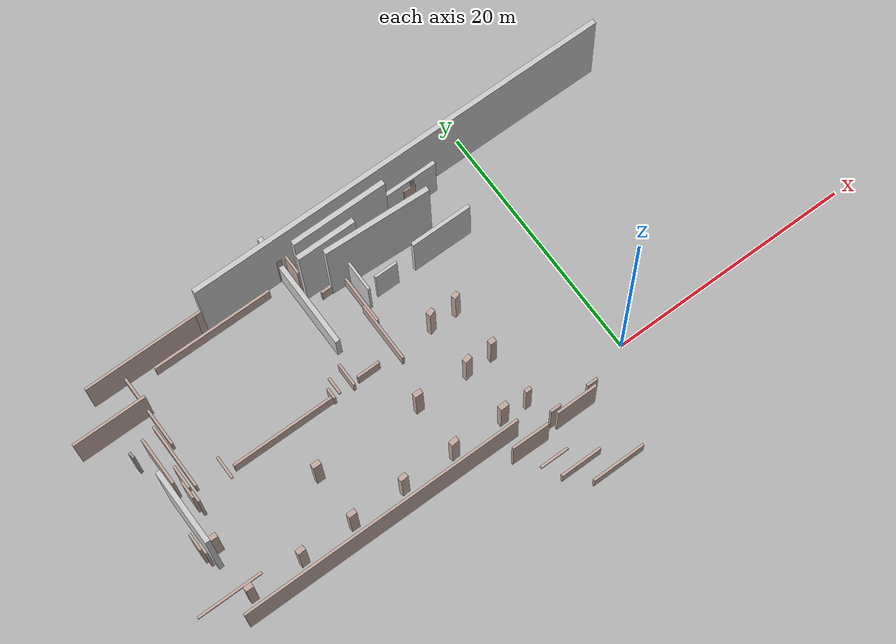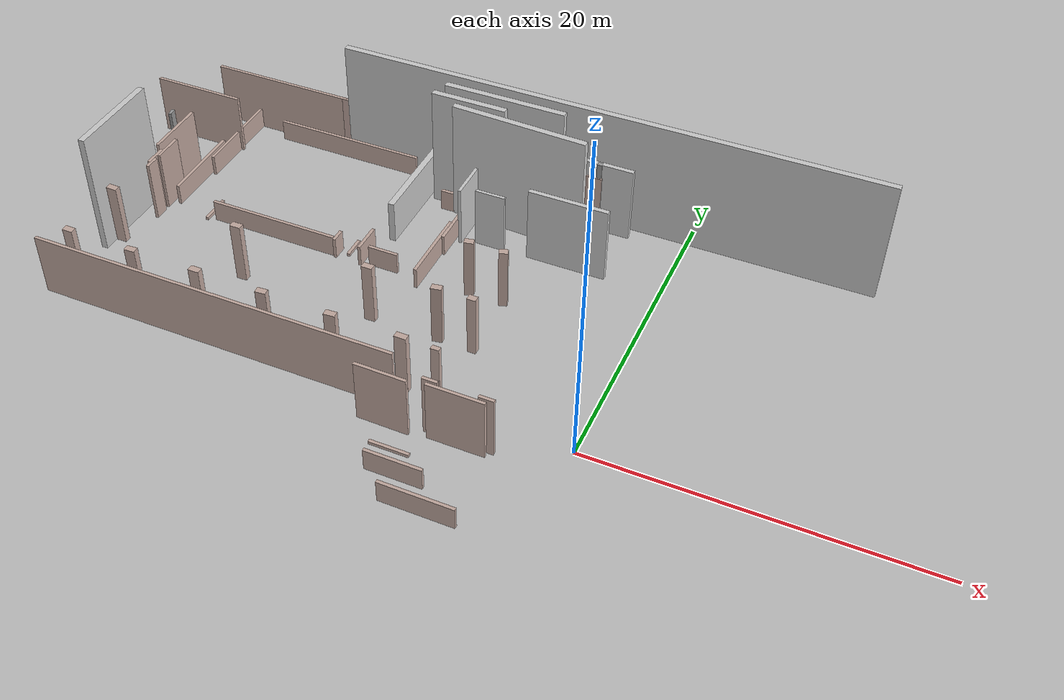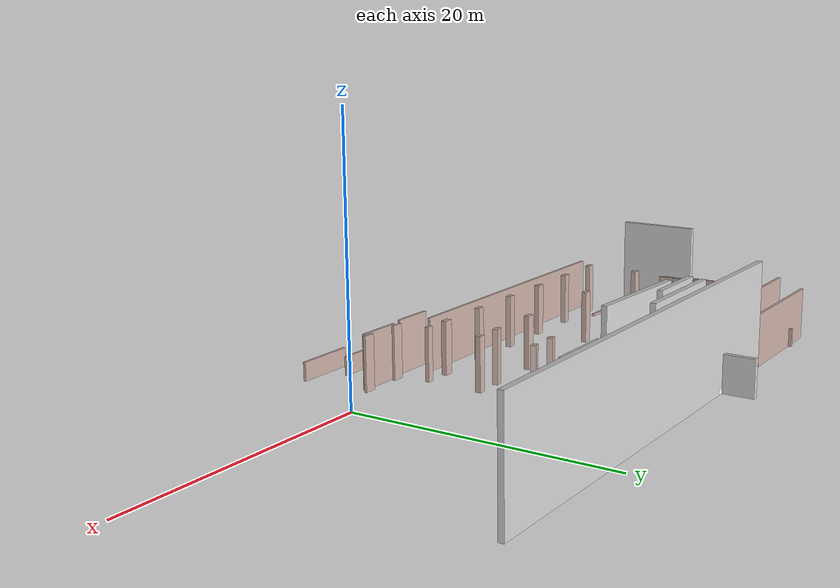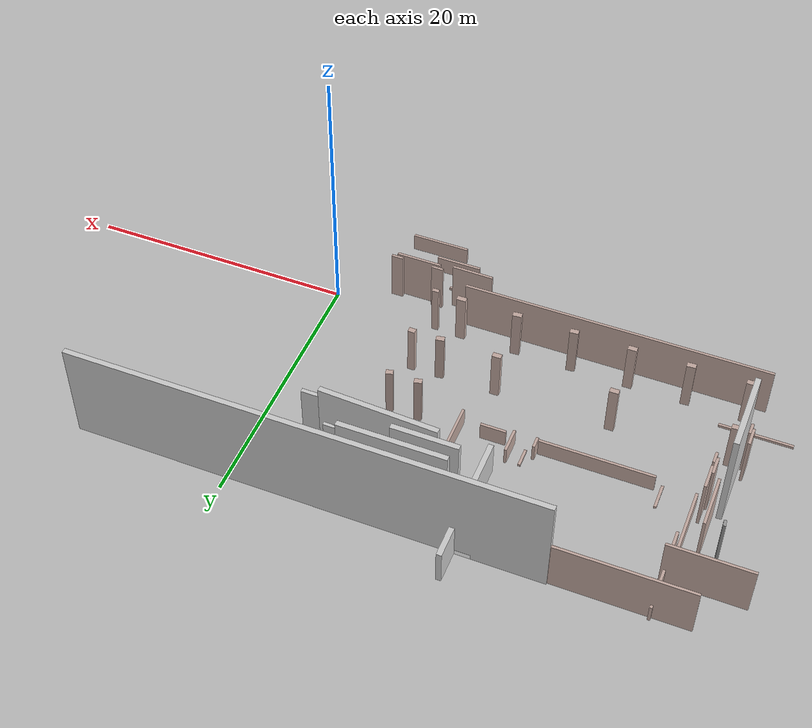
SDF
<sdf version="1.6">
 <model name="gedung_p">
  <pose>0.101024 2.54038 0.0 0.0 -0.0 0.0</pose>
  <link name="Wall_104">
   <collision name="Wall_104_Collision">
    <geometry><box><size>2.89974 0.2 4.0</size></box></geometry>
    <pose>0.0 0.0 2.0 0.0 -0.0 0.0</pose>
   </collision>
   <visual name="Wall_104_Visual">
    <pose>0.0 0.0 2.0 0.0 -0.0 0.0</pose>
    <geometry><box><size>2.89974 0.2 4.0</size></box></geometry>
    <material><ambient>0.8 0.8 0.8 1</ambient><diffuse>0.8 0.8 0.8 1</diffuse></material>
    <meta><layer>0</layer></meta>
   </visual>
   <pose>-12.83302 12.00262 0.0 0.0 -0.0 -1.571844</pose>
  </link>
  <link name="Wall_105">
   <collision name="Wall_105_Collision">
    <geometry><box><size>1.9 0.2 4.0</size></box></geometry>
    <pose>0.0 0.0 2.0 0.0 -0.0 0.0</pose>
   </collision>
   <visual name="Wall_105_Visual">
    <pose>0.0 0.0 2.0 0.0 -0.0 0.0</pose>
    <geometry><box><size>1.9 0.2 4.0</size></box></geometry>
    <material><ambient>0.8 0.8 0.8 1</ambient><diffuse>0.8 0.8 0.8 1</diffuse></material>
    <meta><layer>0</layer></meta>
   </visual>
   <pose>-11.02902 11.04762 0.0 0.0 -0.0 0.0</pose>
  </link>
  <link name="Wall_108">
   <collision name="Wall_108_Collision">
    <geometry><box><size>5.0 0.3 5.0</size></box></geometry>
    <pose>0.0 0.0 2.5 0.0 -0.0 0.0</pose>
   </collision>
   <visual name="Wall_108_Visual">
    <pose>0.0 0.0 2.5 0.0 -0.0 0.0</pose>
    <geometry><box><size>5.0 0.3 5.0</size></box></geometry>
    <material><ambient>0.8 0.8 0.8 1</ambient><diffuse>0.8 0.8 0.8 1</diffuse></material>
    <meta><layer>0</layer></meta>
   </visual>
   <pose>-6.09502 15.3396 0.0 0.0 -0.0 0.0</pose>
  </link>
  <link name="Wall_11">
   <collision name="Wall_11_Collision">
    <geometry><box><size>6.0 0.4 8.0</size></box></geometry>
    <pose>0.0 0.0 4.0 0.0 -0.0 0.0</pose>
   </collision>
   <visual name="Wall_11_Visual">
    <pose>0.0 0.0 4.0 0.0 -0.0 0.0</pose>
    <geometry><box><size>6.0 0.4 8.0</size></box></geometry>
    <material><ambient>0.8 0.8 0.8 1</ambient><diffuse>0.8 0.8 0.8 1</diffuse></material>
    <meta><layer>0</layer></meta>
   </visual>
   <pose>-32.385 4.11362 0.0 0.0 -0.0 1.570796</pose>
  </link>
  <link name="Wall_116">
   <collision name="Wall_116_Collision">
    <geometry><box><size>4.80184 0.4 0.4</size></box></geometry>
    <pose>0.0 0.0 0.2 0.0 -0.0 0.0</pose>
   </collision>
   <visual name="Wall_116_Visual">
    <pose>0.0 0.0 0.2 0.0 -0.0 0.0</pose>
    <geometry><box><size>4.80184 0.4 0.4</size></box></geometry>
    <material><ambient>1 1 1 1</ambient><diffuse>1 1 1 1</diffuse></material>
    <meta><layer>0</layer></meta>
   </visual>
   <pose>-15.64302 16.3096 0.0 0.0 -0.0 6.28318</pose>
  </link>
  <link name="Wall_119">
   <collision name="Wall_119_Collision">
    <geometry><box><size>34.8 0.4 8.0</size></box></geometry>
    <pose>0.0 0.0 4.0 0.0 -0.0 0.0</pose>
   </collision>
   <visual name="Wall_119_Visual">
    <pose>0.0 0.0 4.0 0.0 -0.0 0.0</pose>
    <geometry><box><size>34.8 0.4 8.0</size></box></geometry>
    <material><ambient>0.8 0.8 0.8 1</ambient><diffuse>0.8 0.8 0.8 1</diffuse></material>
    <meta><layer>0</layer></meta>
   </visual>
   <pose>-5.94302 16.3096 0.0 0.0 -0.0 0.0</pose>
  </link>
  <link name="Wall_122">
   <collision name="Wall_122_Collision">
    <geometry><box><size>9.8 0.4 2.8</size></box></geometry>
    <pose>0.0 0.0 1.4 0.0 -0.0 0.0</pose>
   </collision>
   <visual name="Wall_122_Visual">
    <pose>0.0 0.0 1.4 0.0 -0.0 0.0</pose>
    <geometry><box><size>9.8 0.4 2.8</size></box></geometry>
    <material><ambient>0.8 0.8 0.8 1</ambient><diffuse>0.8 0.8 0.8 1</diffuse></material>
    <meta><layer>0</layer></meta>
   </visual>
   <pose>-16.69702 13.9496 0.0 0.0 -0.0 -1.570796</pose>
  </link>
  <link name="Wall_124">
   <collision name="Wall_124_Collision">
    <geometry><box><size>4.8 0.4 8.0</size></box></geometry>
    <pose>0.0 0.0 4.0 0.0 -0.0 0.0</pose>
   </collision>
   <visual name="Wall_124_Visual">
    <pose>0.0 0.0 4.0 0.0 -0.0 0.0</pose>
    <geometry><box><size>4.8 0.4 8.0</size></box></geometry>
    <material><ambient>0.8 0.8 0.8 1</ambient><diffuse>0.8 0.8 0.8 1</diffuse></material>
    <meta><layer>0</layer></meta>
   </visual>
   <pose>-13.78702 14.05762 0.0 0.0 -0.0 3.1416</pose>
  </link>
  <link name="Wall_125">
   <collision name="Wall_125_Collision">
    <geometry><box><size>7.8 0.4 8.0</size></box></geometry>
    <pose>0.0 0.0 4.0 0.0 -0.0 0.0</pose>
   </collision>
   <visual name="Wall_125_Visual">
    <pose>0.0 0.0 4.0 0.0 -0.0 0.0</pose>
    <geometry><box><size>7.8 0.4 8.0</size></box></geometry>
    <material><ambient>0.8 0.8 0.8 1</ambient><diffuse>0.8 0.8 0.8 1</diffuse></material>
    <meta><layer>0</layer></meta>
   </visual>
   <pose>-11.93702 15.15762 0.0 0.0 -0.0 0.0</pose>
  </link>
  <link name="Wall_126">
   <collision name="Wall_126_Collision">
    <geometry><box><size>8.62204 0.4 8.0</size></box></geometry>
    <pose>0.0 0.0 4.0 0.0 -0.0 0.0</pose>
   </collision>
   <visual name="Wall_126_Visual">
    <pose>0.0 0.0 4.0 0.0 -0.0 0.0</pose>
    <geometry><box><size>8.62204 0.4 8.0</size></box></geometry>
    <material><ambient>0.8 0.8 0.8 1</ambient><diffuse>0.8 0.8 0.8 1</diffuse></material>
    <meta><layer>0</layer></meta>
   </visual>
   <pose>-10.13302 13.10262 0.0 0.0 -0.0 -3.18636</pose>
  </link>
  <link name="Wall_128">
   <collision name="Wall_128_Collision">
    <geometry><box><size>4.5 0.3 5.0</size></box></geometry>
    <pose>0.0 0.0 2.5 0.0 -0.0 0.0</pose>
   </collision>
   <visual name="Wall_128_Visual">
    <pose>0.0 0.0 2.5 0.0 -0.0 0.0</pose>
    <geometry><box><size>4.5 0.3 5.0</size></box></geometry>
    <material><ambient>0.8 0.8 0.8 1</ambient><diffuse>0.8 0.8 0.8 1</diffuse></material>
    <meta><layer>0</layer></meta>
   </visual>
   <pose>-8.44502 13.23962 0.0 0.0 -0.0 -3.1416</pose>
  </link>
  <link name="Wall_129">
   <collision name="Wall_129_Collision">
    <geometry><box><size>5.0 0.3 5.0</size></box></geometry>
    <pose>0.0 0.0 2.5 0.0 -0.0 0.0</pose>
   </collision>
   <visual name="Wall_129_Visual">
    <pose>0.0 0.0 2.5 0.0 -0.0 0.0</pose>
    <geometry><box><size>5.0 0.3 5.0</size></box></geometry>
    <material><ambient>0.8 0.8 0.8 1</ambient><diffuse>0.8 0.8 0.8 1</diffuse></material>
    <meta><layer>0</layer></meta>
   </visual>
   <pose>-6.09502 11.1396 0.0 0.0 -0.0 0.0</pose>
  </link>
  <link name="Wall_17">
   <collision name="Wall_17_Collision">
    <geometry><box><size>0.899858 0.2 4.0</size></box></geometry>
    <pose>0.0 0.0 2.0 0.0 -0.0 0.0</pose>
   </collision>
   <visual name="Wall_17_Visual">
    <pose>0.0 0.0 2.0 0.0 -0.0 0.0</pose>
    <geometry><box><size>0.899858 0.2 4.0</size></box></geometry>
    <material>
     <script><uri>file://media/materials/scripts/gazebo.material</uri><name>Gazebo/Grey</name></script>
     <ambient>0.760784 0.662745 0.627451 1</ambient>
    </material>
    <meta><layer>0</layer></meta>
   </visual>
   <pose>-31.148 5.3506 0.0 0.0 -0.0 1.570796</pose>
  </link>
  <link name="Wall_18">
   <collision name="Wall_18_Collision">
    <geometry><box><size>1.4 0.2 4.0</size></box></geometry>
    <pose>0.0 0.0 2.0 0.0 -0.0 0.0</pose>
   </collision>
   <visual name="Wall_18_Visual">
    <pose>0.0 0.0 2.0 0.0 -0.0 0.0</pose>
    <geometry><box><size>1.4 0.2 4.0</size></box></geometry>
    <material>
     <script><uri>file://media/materials/scripts/gazebo.material</uri><name>Gazebo/Grey</name></script>
     <ambient>0.760784 0.662745 0.627451 1</ambient>
    </material>
    <meta><layer>0</layer></meta>
   </visual>
   <pose>-31.325 6.02262 0.0 0.0 -0.0 4.71004</pose>
  </link>
  <link name="Wall_19">
   <collision name="Wall_19_Collision">
    <geometry><box><size>1.899822 0.2 4.0</size></box></geometry>
    <pose>0.0 0.0 2.0 0.0 -0.0 0.0</pose>
   </collision>
   <visual name="Wall_19_Visual">
    <pose>0.0 0.0 2.0 0.0 -0.0 0.0</pose>
    <geometry><box><size>1.899822 0.2 4.0</size></box></geometry>
    <material>
     <script><uri>file://media/materials/scripts/gazebo.material</uri><name>Gazebo/Grey</name></script>
     <ambient>0.760784 0.662745 0.627451 1</ambient>
    </material>
    <meta><layer>0</layer></meta>
   </visual>
   <pose>-31.148 7.04862 0.0 0.0 -0.0 1.570796</pose>
  </link>
  <link name="Wall_196">
   <collision name="Wall_196_Collision">
    <geometry><box><size>4.4 0.2 1.4</size></box></geometry>
    <pose>0.0 0.0 0.7 0.0 -0.0 0.0</pose>
   </collision>
   <visual name="Wall_196_Visual">
    <pose>0.0 0.0 0.7 0.0 -0.0 0.0</pose>
    <geometry><box><size>4.4 0.2 1.4</size></box></geometry>
    <material>
     <script><uri>file://media/materials/scripts/gazebo.material</uri><name>Gazebo/Grey</name></script>
     <ambient>0.760784 0.662745 0.627451 1</ambient>
    </material>
    <meta><layer>0</layer></meta>
   </visual>
   <pose>-5.82102 -9.54838 0.0 0.0 -0.0 6.28318</pose>
  </link>
  <link name="Wall_197">
   <collision name="Wall_197_Collision">
    <geometry><box><size>3.4 0.2 1.4</size></box></geometry>
    <pose>0.0 0.0 0.7 0.0 -0.0 0.0</pose>
   </collision>
   <visual name="Wall_197_Visual">
    <pose>0.0 0.0 0.7 0.0 -0.0 0.0</pose>
    <geometry><box><size>3.4 0.2 1.4</size></box></geometry>
    <material>
     <script><uri>file://media/materials/scripts/gazebo.material</uri><name>Gazebo/Grey</name></script>
     <ambient>0.760784 0.662745 0.627451 1</ambient>
    </material>
    <meta><layer>0</layer></meta>
   </visual>
   <pose>-7.92102 -7.94838 0.0 0.0 -0.0 3.1416</pose>
  </link>
  <link name="Wall_198">
   <collision name="Wall_198_Collision">
    <geometry><box><size>2.4 0.2 0.2</size></box></geometry>
    <pose>0.0 0.0 0.1 0.0 -0.0 0.0</pose>
   </collision>
   <visual name="Wall_198_Visual">
    <pose>0.0 0.0 0.1 0.0 -0.0 0.0</pose>
    <geometry><box><size>2.4 0.2 0.2</size></box></geometry>
    <material>
     <script><uri>file://media/materials/scripts/gazebo.material</uri><name>Gazebo/Grey</name></script>
     <ambient>0.760784 0.662745 0.627451 1</ambient>
    </material>
    <meta><layer>0</layer></meta>
   </visual>
   <pose>-9.02102 -6.3484 0.0 0.0 -0.0 6.28318</pose>
  </link>
  <link name="Wall_199">
   <collision name="Wall_199_Collision">
    <geometry><box><size>3.10826 0.2 4.0</size></box></geometry>
    <pose>0.0 0.0 2.0 0.0 -0.0 0.0</pose>
   </collision>
   <visual name="Wall_199_Visual">
    <pose>0.0 0.0 2.0 0.0 -0.0 0.0</pose>
    <geometry><box><size>3.10826 0.2 4.0</size></box></geometry>
    <material>
     <script><uri>file://media/materials/scripts/gazebo.material</uri><name>Gazebo/Grey</name></script>
     <ambient>0.760784 0.662745 0.627451 1</ambient>
    </material>
    <meta><layer>0</layer></meta>
   </visual>
   <pose>-10.11202 -4.89438 0.0 0.0 -0.0 3.12922</pose>
  </link>
  <link name="Wall_201">
   <collision name="Wall_201_Collision">
    <geometry><box><size>0.9 0.2 4.0</size></box></geometry>
    <pose>0.0 0.0 2.0 0.0 -0.0 0.0</pose>
   </collision>
   <visual name="Wall_201_Visual">
    <pose>0.0 0.0 2.0 0.0 -0.0 0.0</pose>
    <geometry><box><size>0.9 0.2 4.0</size></box></geometry>
    <material>
     <script><uri>file://media/materials/scripts/gazebo.material</uri><name>Gazebo/Grey</name></script>
     <ambient>0.760784 0.662745 0.627451 1</ambient>
    </material>
    <meta><layer>0</layer></meta>
   </visual>
   <pose>-7.51702 -4.32638 0.0 0.0 -0.0 -3.1416</pose>
  </link>
  <link name="Wall_202">
   <collision name="Wall_202_Collision">
    <geometry><box><size>3.4 0.2 4.0</size></box></geometry>
    <pose>0.0 0.0 2.0 0.0 -0.0 0.0</pose>
   </collision>
   <visual name="Wall_202_Visual">
    <pose>0.0 0.0 2.0 0.0 -0.0 0.0</pose>
    <geometry><box><size>3.4 0.2 4.0</size></box></geometry>
    <material>
     <script><uri>file://media/materials/scripts/gazebo.material</uri><name>Gazebo/Grey</name></script>
     <ambient>0.760784 0.662745 0.627451 1</ambient>
    </material>
    <meta><layer>0</layer></meta>
   </visual>
   <pose>-5.91702 -4.67638 0.0 0.0 -0.0 0.0</pose>
  </link>
  <link name="Wall_203">
   <collision name="Wall_203_Collision">
    <geometry><box><size>0.900952 0.2 4.0</size></box></geometry>
    <pose>0.0 0.0 2.0 0.0 -0.0 0.0</pose>
   </collision>
   <visual name="Wall_203_Visual">
    <pose>0.0 0.0 2.0 0.0 -0.0 0.0</pose>
    <geometry><box><size>0.900952 0.2 4.0</size></box></geometry>
    <material>
     <script><uri>file://media/materials/scripts/gazebo.material</uri><name>Gazebo/Grey</name></script>
     <ambient>0.760784 0.662745 0.627451 1</ambient>
    </material>
    <meta><layer>0</layer></meta>
   </visual>
   <pose>-4.31702 -4.32638 0.0 0.0 -0.0 3.1416</pose>
  </link>
  <link name="Wall_21">
   <collision name="Wall_21_Collision">
    <geometry><box><size>3.9 0.2 4.0</size></box></geometry>
    <pose>0.0 0.0 2.0 0.0 -0.0 0.0</pose>
   </collision>
   <visual name="Wall_21_Visual">
    <pose>0.0 0.0 2.0 0.0 -0.0 0.0</pose>
    <geometry><box><size>3.9 0.2 4.0</size></box></geometry>
    <material>
     <script><uri>file://media/materials/scripts/gazebo.material</uri><name>Gazebo/Grey</name></script>
     <ambient>0.760784 0.662745 0.627451 1</ambient>
    </material>
    <meta><layer>0</layer></meta>
   </visual>
   <pose>-31.855 8.95762 0.0 0.0 -0.0 4.71238</pose>
  </link>
  <link name="Wall_218">
   <collision name="Wall_218_Collision">
    <geometry><box><size>0.644524 0.4 4.0</size></box></geometry>
    <pose>0.0 0.0 2.0 0.0 -0.0 0.0</pose>
   </collision>
   <visual name="Wall_218_Visual">
    <pose>0.0 0.0 2.0 0.0 -0.0 0.0</pose>
    <geometry><box><size>0.644524 0.4 4.0</size></box></geometry>
    <material>
     <script><uri>file://media/materials/scripts/gazebo.material</uri><name>Gazebo/Grey</name></script>
     <ambient>0.760784 0.662745 0.627451 1</ambient>
    </material>
    <meta><layer>0</layer></meta>
   </visual>
   <pose>-31.8044 -2.02928 0.0 0.0 -0.0 0.0</pose>
  </link>
  <link name="Wall_22">
   <collision name="Wall_22_Collision">
    <geometry><box><size>0.493318 0.2 4.0</size></box></geometry>
    <pose>0.0 0.0 2.0 0.0 -0.0 0.0</pose>
   </collision>
   <visual name="Wall_22_Visual">
    <pose>0.0 0.0 2.0 0.0 -0.0 0.0</pose>
    <geometry><box><size>0.493318 0.2 4.0</size></box></geometry>
    <material>
     <script><uri>file://media/materials/scripts/gazebo.material</uri><name>Gazebo/Grey</name></script>
     <ambient>1 1 1 1</ambient>
    </material>
    <meta><layer>0</layer></meta>
   </visual>
   <pose>-33.066 10.3756 0.0 0.0 -0.0 1.696236</pose>
  </link>
  <link name="Wall_220">
   <collision name="Wall_220_Collision">
    <geometry><box><size>0.66193 0.4 4.0</size></box></geometry>
    <pose>0.0 0.0 2.0 0.0 -0.0 0.0</pose>
   </collision>
   <visual name="Wall_220_Visual">
    <pose>0.0 0.0 2.0 0.0 -0.0 0.0</pose>
    <geometry><box><size>0.66193 0.4 4.0</size></box></geometry>
    <material>
     <script><uri>file://media/materials/scripts/gazebo.material</uri><name>Gazebo/Grey</name></script>
     <ambient>0.760784 0.662745 0.627451 1</ambient>
    </material>
    <meta><layer>0</layer></meta>
   </visual>
   <pose>-27.5294 -2.02506 0.0 0.0 -0.0 0.064494</pose>
  </link>
  <link name="Wall_223">
   <collision name="Wall_223_Collision">
    <geometry><box><size>0.67166 0.4 4.0</size></box></geometry>
    <pose>0.0 0.0 2.0 0.0 -0.0 0.0</pose>
   </collision>
   <visual name="Wall_223_Visual">
    <pose>0.0 0.0 2.0 0.0 -0.0 0.0</pose>
    <geometry><box><size>0.67166 0.4 4.0</size></box></geometry>
    <material>
     <script><uri>file://media/materials/scripts/gazebo.material</uri><name>Gazebo/Grey</name></script>
     <ambient>0.760784 0.662745 0.627451 1</ambient>
    </material>
    <meta><layer>0</layer></meta>
   </visual>
   <pose>-31.8258 2.28738 0.0 0.0 -0.0 6.28318</pose>
  </link>
  <link name="Wall_225">
   <collision name="Wall_225_Collision">
    <geometry><box><size>0.673398 0.4 4.0</size></box></geometry>
    <pose>0.0 0.0 2.0 0.0 -0.0 0.0</pose>
   </collision>
   <visual name="Wall_225_Visual">
    <pose>0.0 0.0 2.0 0.0 -0.0 0.0</pose>
    <geometry><box><size>0.673398 0.4 4.0</size></box></geometry>
    <material>
     <script><uri>file://media/materials/scripts/gazebo.material</uri><name>Gazebo/Grey</name></script>
     <ambient>0.760784 0.662745 0.627451 1</ambient>
    </material>
    <meta><layer>0</layer></meta>
   </visual>
   <pose>-23.2538 -2.00662 0.0 0.0 -0.0 0.0</pose>
  </link>
  <link name="Wall_227">
   <collision name="Wall_227_Collision">
    <geometry><box><size>0.641584 0.4 4.0</size></box></geometry>
    <pose>0.0 0.0 2.0 0.0 -0.0 0.0</pose>
   </collision>
   <visual name="Wall_227_Visual">
    <pose>0.0 0.0 2.0 0.0 -0.0 0.0</pose>
    <geometry><box><size>0.641584 0.4 4.0</size></box></geometry>
    <material>
     <script><uri>file://media/materials/scripts/gazebo.material</uri><name>Gazebo/Grey</name></script>
     <ambient>0.760784 0.662745 0.627451 1</ambient>
    </material>
    <meta><layer>0</layer></meta>
   </visual>
   <pose>-18.92862 -2.02304 0.0 0.0 -0.0 0.090846</pose>
  </link>
  <link name="Wall_229">
   <collision name="Wall_229_Collision">
    <geometry><box><size>0.684544 0.4 4.0</size></box></geometry>
    <pose>0.0 0.0 2.0 0.0 -0.0 0.0</pose>
   </collision>
   <visual name="Wall_229_Visual">
    <pose>0.0 0.0 2.0 0.0 -0.0 0.0</pose>
    <geometry><box><size>0.684544 0.4 4.0</size></box></geometry>
    <material>
     <script><uri>file://media/materials/scripts/gazebo.material</uri><name>Gazebo/Grey</name></script>
     <ambient>0.760784 0.662745 0.627451 1</ambient>
    </material>
    <meta><layer>0</layer></meta>
   </visual>
   <pose>-14.60892 -2.0449 0.0 0.0 -0.0 -6.2063</pose>
  </link>
  <link name="Wall_23">
   <collision name="Wall_23_Collision">
    <geometry><box><size>6.0 0.2 4.0</size></box></geometry>
    <pose>0.0 0.0 2.0 0.0 -0.0 0.0</pose>
   </collision>
   <visual name="Wall_23_Visual">
    <pose>0.0 0.0 2.0 0.0 -0.0 0.0</pose>
    <geometry><box><size>6.0 0.2 4.0</size></box></geometry>
    <material>
     <script><uri>file://media/materials/scripts/gazebo.material</uri><name>Gazebo/Grey</name></script>
     <ambient>0.760784 0.662745 0.627451 1</ambient>
    </material>
    <meta><layer>0</layer></meta>
   </visual>
   <pose>-32.969 13.3856 0.0 0.0 -0.0 3.1416</pose>
  </link>
  <link name="Wall_231">
   <collision name="Wall_231_Collision">
    <geometry><box><size>0.717142 0.4 4.0</size></box></geometry>
    <pose>0.0 0.0 2.0 0.0 -0.0 0.0</pose>
   </collision>
   <visual name="Wall_231_Visual">
    <pose>0.0 0.0 2.0 0.0 -0.0 0.0</pose>
    <geometry><box><size>0.717142 0.4 4.0</size></box></geometry>
    <material>
     <script><uri>file://media/materials/scripts/gazebo.material</uri><name>Gazebo/Grey</name></script>
     <ambient>0.760784 0.662745 0.627451 1</ambient>
    </material>
    <meta><layer>0</layer></meta>
   </visual>
   <pose>-10.3275 -2.0285 0.0 0.0 -0.0 6.28318</pose>
  </link>
  <link name="Wall_25">
   <collision name="Wall_25_Collision">
    <geometry><box><size>16.4078 0.2 4.0</size></box></geometry>
    <pose>0.0 0.0 2.0 0.0 -0.0 0.0</pose>
   </collision>
   <visual name="Wall_25_Visual">
    <pose>0.0 0.0 2.0 0.0 -0.0 0.0</pose>
    <geometry><box><size>16.4078 0.2 4.0</size></box></geometry>
    <material>
     <script><uri>file://media/materials/scripts/gazebo.material</uri><name>Gazebo/Grey</name></script>
     <ambient>0.760784 0.662745 0.627451 1</ambient>
    </material>
    <meta><layer>0</layer></meta>
   </visual>
   <pose>-24.865 16.2926 0.0 0.0 -0.0 0.001728</pose>
  </link>
  <link name="Wall_26">
   <collision name="Wall_26_Collision">
    <geometry><box><size>7.1878 0.2 4.0</size></box></geometry>
    <pose>0.0 0.0 2.0 0.0 -0.0 0.0</pose>
   </collision>
   <visual name="Wall_26_Visual">
    <pose>0.0 0.0 2.0 0.0 -0.0 0.0</pose>
    <geometry><box><size>7.1878 0.2 4.0</size></box></geometry>
    <material>
     <script><uri>file://media/materials/scripts/gazebo.material</uri><name>Gazebo/Grey</name></script>
     <ambient>0.760784 0.662745 0.627451 1</ambient>
    </material>
    <meta><layer>0</layer></meta>
   </visual>
   <pose>-20.255 16.2926 0.0 0.0 -0.0 -6.27918</pose>
  </link>
  <link name="Wall_266">
   <collision name="Wall_266_Collision">
    <geometry><box><size>0.66846 0.4 4.0</size></box></geometry>
    <pose>0.0 0.0 2.0 0.0 -0.0 0.0</pose>
   </collision>
   <visual name="Wall_266_Visual">
    <pose>0.0 0.0 2.0 0.0 -0.0 0.0</pose>
    <geometry><box><size>0.66846 0.4 4.0</size></box></geometry>
    <material>
     <script><uri>file://media/materials/scripts/gazebo.material</uri><name>Gazebo/Grey</name></script>
     <ambient>0.760784 0.662745 0.627451 1</ambient>
    </material>
    <meta><layer>0</layer></meta>
   </visual>
   <pose>-23.2204 2.29036 0.0 0.0 -0.0 0.0</pose>
  </link>
  <link name="Wall_268">
   <collision name="Wall_268_Collision">
    <geometry><box><size>0.667778 0.4 4.0</size></box></geometry>
    <pose>0.0 0.0 2.0 0.0 -0.0 0.0</pose>
   </collision>
   <visual name="Wall_268_Visual">
    <pose>0.0 0.0 2.0 0.0 -0.0 0.0</pose>
    <geometry><box><size>0.667778 0.4 4.0</size></box></geometry>
    <material>
     <script><uri>file://media/materials/scripts/gazebo.material</uri><name>Gazebo/Grey</name></script>
     <ambient>0.760784 0.662745 0.627451 1</ambient>
    </material>
    <meta><layer>0</layer></meta>
   </visual>
   <pose>-14.59404 2.2521 0.0 0.0 -0.0 6.28318</pose>
  </link>
  <link name="Wall_270">
   <collision name="Wall_270_Collision">
    <geometry><box><size>0.63032 0.4 4.0</size></box></geometry>
    <pose>0.0 0.0 2.0 0.0 -0.0 0.0</pose>
   </collision>
   <visual name="Wall_270_Visual">
    <pose>0.0 0.0 2.0 0.0 -0.0 0.0</pose>
    <geometry><box><size>0.63032 0.4 4.0</size></box></geometry>
    <material>
     <script><uri>file://media/materials/scripts/gazebo.material</uri><name>Gazebo/Grey</name></script>
     <ambient>0.760784 0.662745 0.627451 1</ambient>
    </material>
    <meta><layer>0</layer></meta>
   </visual>
   <pose>-10.3096 2.24254 0.0 0.0 -0.0 0.166282</pose>
  </link>
  <link name="Wall_272">
   <collision name="Wall_272_Collision">
    <geometry><box><size>0.53389 0.4 4.0</size></box></geometry>
    <pose>0.0 0.0 2.0 0.0 -0.0 0.0</pose>
   </collision>
   <visual name="Wall_272_Visual">
    <pose>0.0 0.0 2.0 0.0 -0.0 0.0</pose>
    <geometry><box><size>0.53389 0.4 4.0</size></box></geometry>
    <material>
     <script><uri>file://media/materials/scripts/gazebo.material</uri><name>Gazebo/Grey</name></script>
     <ambient>0.760784 0.662745 0.627451 1</ambient>
    </material>
    <meta><layer>0</layer></meta>
   </visual>
   <pose>-8.13868 2.2521 0.0 0.0 -0.0 0.0</pose>
  </link>
  <link name="Wall_274">
   <collision name="Wall_274_Collision">
    <geometry><box><size>0.573202 0.4 4.0</size></box></geometry>
    <pose>0.0 0.0 2.0 0.0 -0.0 0.0</pose>
   </collision>
   <visual name="Wall_274_Visual">
    <pose>0.0 0.0 2.0 0.0 -0.0 0.0</pose>
    <geometry><box><size>0.573202 0.4 4.0</size></box></geometry>
    <material>
     <script><uri>file://media/materials/scripts/gazebo.material</uri><name>Gazebo/Grey</name></script>
     <ambient>0.760784 0.662745 0.627451 1</ambient>
    </material>
    <meta><layer>0</layer></meta>
   </visual>
   <pose>-10.33828 6.56526 0.0 0.0 -0.0 0.221314</pose>
  </link>
  <link name="Wall_276">
   <collision name="Wall_276_Collision">
    <geometry><box><size>0.535248 0.4 4.0</size></box></geometry>
    <pose>0.0 0.0 2.0 0.0 -0.0 0.0</pose>
   </collision>
   <visual name="Wall_276_Visual">
    <pose>0.0 0.0 2.0 0.0 -0.0 0.0</pose>
    <geometry><box><size>0.535248 0.4 4.0</size></box></geometry>
    <material>
     <script><uri>file://media/materials/scripts/gazebo.material</uri><name>Gazebo/Grey</name></script>
     <ambient>0.760784 0.662745 0.627451 1</ambient>
    </material>
    <meta><layer>0</layer></meta>
   </visual>
   <pose>-8.17692 6.54612 0.0 0.0 -0.0 0.283794</pose>
  </link>
  <link name="Wall_278">
   <collision name="Wall_278_Collision">
    <geometry><box><size>1.0 0.4 4.0</size></box></geometry>
    <pose>0.0 0.0 2.0 0.0 -0.0 0.0</pose>
   </collision>
   <visual name="Wall_278_Visual">
    <pose>0.0 0.0 2.0 0.0 -0.0 0.0</pose>
    <geometry><box><size>1.0 0.4 4.0</size></box></geometry>
    <material>
     <script><uri>file://media/materials/scripts/gazebo.material</uri><name>Gazebo/Grey</name></script>
     <ambient>0.760784 0.662745 0.627451 1</ambient>
    </material>
    <meta><layer>0</layer></meta>
   </visual>
   <pose>-6.01108 15.2774 0.0 0.0 -0.0 0.0</pose>
  </link>
  <link name="Wall_279">
   <collision name="Wall_279_Collision">
    <geometry><box><size>0.3 0.3 5.0</size></box></geometry>
    <pose>0.0 0.0 2.5 0.0 -0.0 0.0</pose>
   </collision>
   <visual name="Wall_279_Visual">
    <pose>0.0 0.0 2.5 0.0 -0.0 0.0</pose>
    <geometry><box><size>0.3 0.3 5.0</size></box></geometry>
    <material>
     <script><uri>file://media/materials/scripts/gazebo.material</uri><name>Gazebo/Grey</name></script>
     <ambient>1 1 1 1</ambient>
    </material>
    <meta><layer>0</layer></meta>
   </visual>
   <pose>-5.71108 15.2774 0.0 0.0 -0.0 0.0</pose>
  </link>
  <link name="Wall_28">
   <collision name="Wall_28_Collision">
    <geometry><box><size>0.414774 0.2 4.0</size></box></geometry>
    <pose>0.0 0.0 2.0 0.0 -0.0 0.0</pose>
   </collision>
   <visual name="Wall_28_Visual">
    <pose>0.0 0.0 2.0 0.0 -0.0 0.0</pose>
    <geometry><box><size>0.414774 0.2 4.0</size></box></geometry>
    <material>
     <script><uri>file://media/materials/scripts/gazebo.material</uri><name>Gazebo/Grey</name></script>
     <ambient>0.760784 0.662745 0.627451 1</ambient>
    </material>
    <meta><layer>0</layer></meta>
   </visual>
   <pose>-16.76502 16.1926 0.0 0.0 -0.0 -3.21632</pose>
  </link>
  <link name="Wall_285">
   <collision name="Wall_285_Collision">
    <geometry><box><size>0.5 0.3 4.0</size></box></geometry>
    <pose>0.0 0.0 2.0 0.0 -0.0 0.0</pose>
   </collision>
   <visual name="Wall_285_Visual">
    <pose>0.0 0.0 2.0 0.0 -0.0 0.0</pose>
    <geometry><box><size>0.5 0.3 4.0</size></box></geometry>
    <material>
     <script><uri>file://media/materials/scripts/gazebo.material</uri><name>Gazebo/Grey</name></script>
     <ambient>0.760784 0.662745 0.627451 1</ambient>
    </material>
    <meta><layer>0</layer></meta>
   </visual>
   <pose>-8.25902 -2.10838 0.0 0.0 -0.0 0.0</pose>
  </link>
  <link name="Wall_29">
   <collision name="Wall_29_Collision">
    <geometry><box><size>1.9 0.2 4.0</size></box></geometry>
    <pose>0.0 0.0 2.0 0.0 -0.0 0.0</pose>
   </collision>
   <visual name="Wall_29_Visual">
    <pose>0.0 0.0 2.0 0.0 -0.0 0.0</pose>
    <geometry><box><size>1.9 0.2 4.0</size></box></geometry>
    <material>
     <script><uri>file://media/materials/scripts/gazebo.material</uri><name>Gazebo/Grey</name></script>
     <ambient>0.760784 0.662745 0.627451 1</ambient>
    </material>
    <meta><layer>0</layer></meta>
   </visual>
   <pose>-16.16802 15.4846 0.0 0.0 -0.0 -1.570796</pose>
  </link>
  <link name="Wall_30">
   <collision name="Wall_30_Collision">
    <geometry><box><size>1.0 0.2 1.4</size></box></geometry>
    <pose>0.0 0.0 0.7 0.0 -0.0 0.0</pose>
   </collision>
   <visual name="Wall_30_Visual">
    <pose>0.0 0.0 0.7 0.0 -0.0 0.0</pose>
    <geometry><box><size>1.0 0.2 1.4</size></box></geometry>
    <material>
     <script><uri>file://media/materials/scripts/gazebo.material</uri><name>Gazebo/Grey</name></script>
     <ambient>0.760784 0.662745 0.627451 1</ambient>
    </material>
    <meta><layer>0</layer></meta>
   </visual>
   <pose>-15.16702 14.8836 0.0 0.0 -0.0 0.0</pose>
  </link>
  <link name="Wall_36">
   <collision name="Wall_36_Collision">
    <geometry><box><size>4.4 0.2 1.4</size></box></geometry>
    <pose>0.0 0.0 0.7 0.0 -0.0 0.0</pose>
   </collision>
   <visual name="Wall_36_Visual">
    <pose>0.0 0.0 0.7 0.0 -0.0 0.0</pose>
    <geometry><box><size>4.4 0.2 1.4</size></box></geometry>
    <material>
     <script><uri>file://media/materials/scripts/gazebo.material</uri><name>Gazebo/Grey</name></script>
     <ambient>0.760784 0.662745 0.627451 1</ambient>
    </material>
    <meta><layer>0</layer></meta>
   </visual>
   <pose>-13.28202 11.29862 0.0 0.0 -0.0 -1.570796</pose>
  </link>
  <link name="Wall_38">
   <collision name="Wall_38_Collision">
    <geometry><box><size>4.9 0.2 1.4</size></box></geometry>
    <pose>0.0 0.0 0.7 0.0 -0.0 0.0</pose>
   </collision>
   <visual name="Wall_38_Visual">
    <pose>0.0 0.0 0.7 0.0 -0.0 0.0</pose>
    <geometry><box><size>4.9 0.2 1.4</size></box></geometry>
    <material>
     <script><uri>file://media/materials/scripts/gazebo.material</uri><name>Gazebo/Grey</name></script>
     <ambient>0.760784 0.662745 0.627451 1</ambient>
    </material>
    <meta><layer>0</layer></meta>
   </visual>
   <pose>-13.45902 8.1516 0.0 0.0 -0.0 -4.71238</pose>
  </link>
  <link name="Wall_39">
   <collision name="Wall_39_Collision">
    <geometry><box><size>1.899402 0.2 1.4</size></box></geometry>
    <pose>0.0 0.0 0.7 0.0 -0.0 0.0</pose>
   </collision>
   <visual name="Wall_39_Visual">
    <pose>0.0 0.0 0.7 0.0 -0.0 0.0</pose>
    <geometry><box><size>1.899402 0.2 1.4</size></box></geometry>
    <material>
     <script><uri>file://media/materials/scripts/gazebo.material</uri><name>Gazebo/Grey</name></script>
     <ambient>0.760784 0.662745 0.627451 1</ambient>
    </material>
    <meta><layer>0</layer></meta>
   </visual>
   <pose>-15.97102 6.4896 0.0 0.0 -0.0 6.28318</pose>
  </link>
  <link name="Wall_40">
   <collision name="Wall_40_Collision">
    <geometry><box><size>1.899884 0.2 1.4</size></box></geometry>
    <pose>0.0 0.0 0.7 0.0 -0.0 0.0</pose>
   </collision>
   <visual name="Wall_40_Visual">
    <pose>0.0 0.0 0.7 0.0 -0.0 0.0</pose>
    <geometry><box><size>1.899884 0.2 1.4</size></box></geometry>
    <material>
     <script><uri>file://media/materials/scripts/gazebo.material</uri><name>Gazebo/Grey</name></script>
     <ambient>0.760784 0.662745 0.627451 1</ambient>
    </material>
    <meta><layer>0</layer></meta>
   </visual>
   <pose>-17.42202 7.0906 0.0 0.0 -0.0 4.71238</pose>
  </link>
  <link name="Wall_42">
   <collision name="Wall_42_Collision">
    <geometry><box><size>1.399154 0.2 0.2</size></box></geometry>
    <pose>0.0 0.0 0.1 0.0 -0.0 0.0</pose>
   </collision>
   <visual name="Wall_42_Visual">
    <pose>0.0 0.0 0.1 0.0 -0.0 0.0</pose>
    <geometry><box><size>1.399154 0.2 0.2</size></box></geometry>
    <material>
     <script><uri>file://media/materials/scripts/gazebo.material</uri><name>Gazebo/Grey</name></script>
     <ambient>0.760784 0.662745 0.627451 1</ambient>
    </material>
    <meta><layer>0</layer></meta>
   </visual>
   <pose>-18.44702 7.26762 0.0 0.0 -0.0 -4.71238</pose>
  </link>
  <link name="Wall_45">
   <collision name="Wall_45_Collision">
    <geometry><box><size>0.899902 0.2 1.4</size></box></geometry>
    <pose>0.0 0.0 0.7 0.0 -0.0 0.0</pose>
   </collision>
   <visual name="Wall_45_Visual">
    <pose>0.0 0.0 0.7 0.0 -0.0 0.0</pose>
    <geometry><box><size>0.899902 0.2 1.4</size></box></geometry>
    <material>
     <script><uri>file://media/materials/scripts/gazebo.material</uri><name>Gazebo/Grey</name></script>
     <ambient>0.760784 0.662745 0.627451 1</ambient>
    </material>
    <meta><layer>0</layer></meta>
   </visual>
   <pose>-19.11802 6.59662 0.0 0.0 -0.0 -4.71238</pose>
  </link>
  <link name="Wall_46">
   <collision name="Wall_46_Collision">
    <geometry><box><size>8.4 0.2 1.4</size></box></geometry>
    <pose>0.0 0.0 0.7 0.0 -0.0 0.0</pose>
   </collision>
   <visual name="Wall_46_Visual">
    <pose>0.0 0.0 0.7 0.0 -0.0 0.0</pose>
    <geometry><box><size>8.4 0.2 1.4</size></box></geometry>
    <material>
     <script><uri>file://media/materials/scripts/gazebo.material</uri><name>Gazebo/Grey</name></script>
     <ambient>0.760784 0.662745 0.627451 1</ambient>
    </material>
    <meta><layer>0</layer></meta>
   </visual>
   <pose>-23.465 6.34962 0.0 0.0 -0.0 6.28318</pose>
  </link>
  <link name="Wall_48">
   <collision name="Wall_48_Collision">
    <geometry><box><size>1.10602 0.2 1.4</size></box></geometry>
    <pose>0.0 0.0 0.7 0.0 -0.0 0.0</pose>
   </collision>
   <visual name="Wall_48_Visual">
    <pose>0.0 0.0 0.7 0.0 -0.0 0.0</pose>
    <geometry><box><size>1.10602 0.2 1.4</size></box></geometry>
    <material>
     <script><uri>file://media/materials/scripts/gazebo.material</uri><name>Gazebo/Grey</name></script>
     <ambient>0.760784 0.662745 0.627451 1</ambient>
    </material>
    <meta><layer>0</layer></meta>
   </visual>
   <pose>-14.77002 13.23662 0.0 0.0 -0.0 -3.12834</pose>
  </link>
  <link name="Wall_5">
   <collision name="Wall_5_Collision">
    <geometry><box><size>5.4 0.2 0.2</size></box></geometry>
    <pose>0.0 0.0 0.1 0.0 -0.0 0.0</pose>
   </collision>
   <visual name="Wall_5_Visual">
    <pose>0.0 0.0 0.1 0.0 -0.0 0.0</pose>
    <geometry><box><size>5.4 0.2 0.2</size></box></geometry>
    <material>
     <script><uri>file://media/materials/scripts/gazebo.material</uri><name>Gazebo/Grey</name></script>
     <ambient>0.760784 0.662745 0.627451 1</ambient>
    </material>
    <meta><layer>0</layer></meta>
   </visual>
   <pose>-33.021 -0.82039 0.0 0.0 -0.0 -3.1416</pose>
  </link>
  <link name="Wall_52">
   <collision name="Wall_52_Collision">
    <geometry><box><size>1.394016 0.2 0.2</size></box></geometry>
    <pose>0.0 0.0 0.1 0.0 -0.0 0.0</pose>
   </collision>
   <visual name="Wall_52_Visual">
    <pose>0.0 0.0 0.1 0.0 -0.0 0.0</pose>
    <geometry><box><size>1.394016 0.2 0.2</size></box></geometry>
    <material>
     <script><uri>file://media/materials/scripts/gazebo.material</uri><name>Gazebo/Grey</name></script>
     <ambient>0.760784 0.662745 0.627451 1</ambient>
    </material>
    <meta><layer>0</layer></meta>
   </visual>
   <pose>-14.77002 14.2866 0.0 0.0 -0.0 3.13154</pose>
  </link>
  <link name="Wall_54">
   <collision name="Wall_54_Collision">
    <geometry><box><size>1.9 0.2 0.2</size></box></geometry>
    <pose>0.0 0.0 0.1 0.0 -0.0 0.0</pose>
   </collision>
   <visual name="Wall_54_Visual">
    <pose>0.0 0.0 0.1 0.0 -0.0 0.0</pose>
    <geometry><box><size>1.9 0.2 0.2</size></box></geometry>
    <material>
     <script><uri>file://media/materials/scripts/gazebo.material</uri><name>Gazebo/Grey</name></script>
     <ambient>0.760784 0.662745 0.627451 1</ambient>
    </material>
    <meta><layer>0</layer></meta>
   </visual>
   <pose>-28.166 6.95062 0.0 0.0 -0.0 4.71238</pose>
  </link>
  <link name="Wall_55">
   <collision name="Wall_55_Collision">
    <geometry><box><size>5.4 0.2 1.4</size></box></geometry>
    <pose>0.0 0.0 0.7 0.0 -0.0 0.0</pose>
   </collision>
   <visual name="Wall_55_Visual">
    <pose>0.0 0.0 0.7 0.0 -0.0 0.0</pose>
    <geometry><box><size>5.4 0.2 1.4</size></box></geometry>
    <material>
     <script><uri>file://media/materials/scripts/gazebo.material</uri><name>Gazebo/Grey</name></script>
     <ambient>0.760784 0.662745 0.627451 1</ambient>
    </material>
    <meta><layer>0</layer></meta>
   </visual>
   <pose>-30.605 9.3896 0.0 0.0 -0.0 4.71238</pose>
  </link>
  <link name="Wall_6">
   <collision name="Wall_6_Collision">
    <geometry><box><size>23.0 0.2 4.0</size></box></geometry>
    <pose>0.0 0.0 2.0 0.0 -0.0 0.0</pose>
   </collision>
   <visual name="Wall_6_Visual">
    <pose>0.0 0.0 2.0 0.0 -0.0 0.0</pose>
    <geometry><box><size>23.0 0.2 4.0</size></box></geometry>
    <material>
     <script><uri>file://media/materials/scripts/gazebo.material</uri><name>Gazebo/Grey</name></script>
     <ambient>0.760784 0.662745 0.627451 1</ambient>
    </material>
    <meta><layer>0</layer></meta>
   </visual>
   <pose>-21.621 -3.42038 0.0 0.0 -0.0 0.0</pose>
  </link>
  <link name="Wall_8">
   <collision name="Wall_8_Collision">
    <geometry><box><size>0.9 0.2 4.0</size></box></geometry>
    <pose>0.0 0.0 2.0 0.0 -0.0 0.0</pose>
   </collision>
   <visual name="Wall_8_Visual">
    <pose>0.0 0.0 2.0 0.0 -0.0 0.0</pose>
    <geometry><box><size>0.9 0.2 4.0</size></box></geometry>
    <material>
     <script><uri>file://media/materials/scripts/gazebo.material</uri><name>Gazebo/Grey</name></script>
     <ambient>0.760784 0.662745 0.627451 1</ambient>
    </material>
    <meta><layer>0</layer></meta>
   </visual>
   <pose>-32.774 2.0266 0.0 0.0 -0.0 1.570796</pose>
  </link>
  <link name="Wall_84">
   <collision name="Wall_84_Collision">
    <geometry><box><size>6.4 0.2 1.4</size></box></geometry>
    <pose>0.0 0.0 0.7 0.0 -0.0 0.0</pose>
   </collision>
   <visual name="Wall_84_Visual">
    <pose>0.0 0.0 0.7 0.0 -0.0 0.0</pose>
    <geometry><box><size>6.4 0.2 1.4</size></box></geometry>
    <material>
     <script><uri>file://media/materials/scripts/gazebo.material</uri><name>Gazebo/Grey</name></script>
     <ambient>0.760784 0.662745 0.627451 1</ambient>
    </material>
    <meta><layer>0</layer></meta>
   </visual>
   <pose>-30.251 13.41962 0.0 0.0 -0.0 1.570796</pose>
  </link>
  <link name="Wall_86">
   <collision name="Wall_86_Collision">
    <geometry><box><size>9.9 0.2 1.4</size></box></geometry>
    <pose>0.0 0.0 0.7 0.0 -0.0 0.0</pose>
   </collision>
   <visual name="Wall_86_Visual">
    <pose>0.0 0.0 0.7 0.0 -0.0 0.0</pose>
    <geometry><box><size>9.9 0.2 1.4</size></box></geometry>
    <material>
     <script><uri>file://media/materials/scripts/gazebo.material</uri><name>Gazebo/Grey</name></script>
     <ambient>0.760784 0.662745 0.627451 1</ambient>
    </material>
    <meta><layer>0</layer></meta>
   </visual>
   <pose>-23.209 15.61162 0.0 0.0 -0.0 0.0</pose>
  </link>
  <link name="Wall_89">
   <collision name="Wall_89_Collision">
    <geometry><box><size>0.3 0.3 5.0</size></box></geometry>
    <pose>0.0 0.0 2.5 0.0 -0.0 0.0</pose>
   </collision>
   <visual name="Wall_89_Visual">
    <pose>0.0 0.0 2.5 0.0 -0.0 0.0</pose>
    <geometry><box><size>0.3 0.3 5.0</size></box></geometry>
    <material>
     <script><uri>file://media/materials/scripts/gazebo.material</uri><name>Gazebo/Grey</name></script>
     <ambient>1 1 1 1</ambient>
    </material>
    <meta><layer>0</layer></meta>
   </visual>
   <pose>-8.44502 15.3396 0.0 0.0 -0.0 0.0</pose>
  </link>
  <link name="Wall_9">
   <collision name="Wall_9_Collision">
    <geometry><box><size>1.4 0.2 4.0</size></box></geometry>
    <pose>0.0 0.0 2.0 0.0 -0.0 0.0</pose>
   </collision>
   <visual name="Wall_9_Visual">
    <pose>0.0 0.0 2.0 0.0 -0.0 0.0</pose>
    <geometry><box><size>1.4 0.2 4.0</size></box></geometry>
    <material>
     <script><uri>file://media/materials/scripts/gazebo.material</uri><name>Gazebo/Grey</name></script>
     <ambient>0.760784 0.662745 0.627451 1</ambient>
    </material>
    <meta><layer>0</layer></meta>
   </visual>
   <pose>-32.951 2.6986 0.0 0.0 -0.0 4.71004</pose>
  </link>
  <link name="Wall_96">
   <collision name="Wall_96_Collision">
    <geometry><box><size>0.3 0.3 5.0</size></box></geometry>
    <pose>0.0 0.0 2.5 0.0 -0.0 0.0</pose>
   </collision>
   <visual name="Wall_96_Visual">
    <pose>0.0 0.0 2.5 0.0 -0.0 0.0</pose>
    <geometry><box><size>0.3 0.3 5.0</size></box></geometry>
    <material>
     <script><uri>file://media/materials/scripts/gazebo.material</uri><name>Gazebo/Grey</name></script>
     <ambient>1 1 1 1</ambient>
    </material>
    <meta><layer>0</layer></meta>
   </visual>
   <pose>-8.44502 15.3396 0.0 0.0 -0.0 0.0</pose>
  </link>
  <static>1</static>
 </model>
</sdf>
